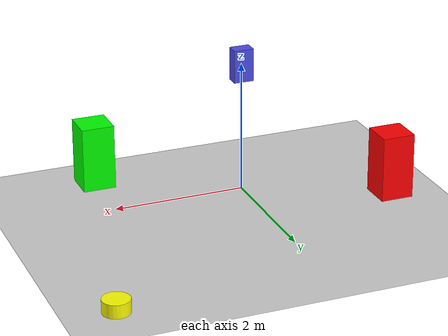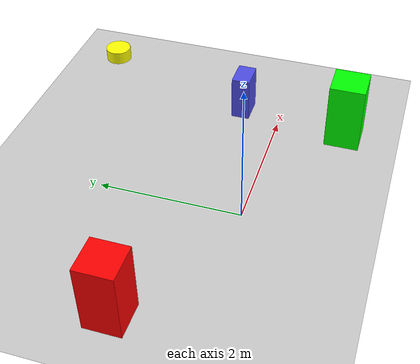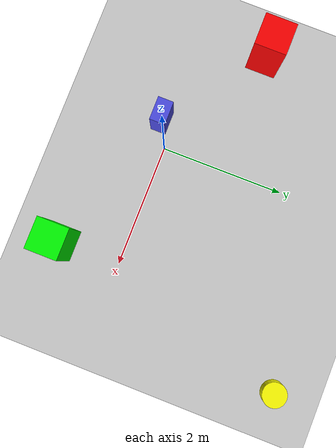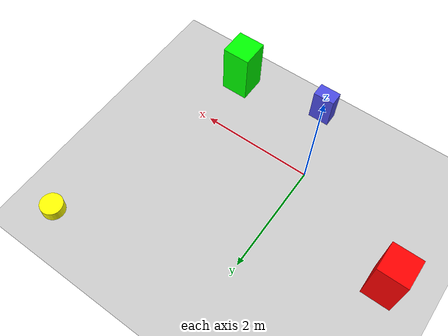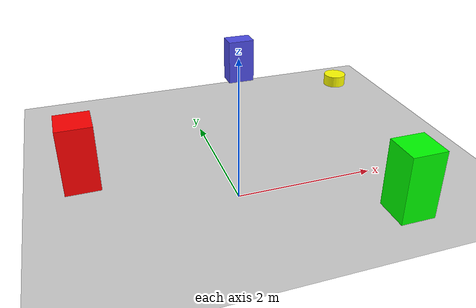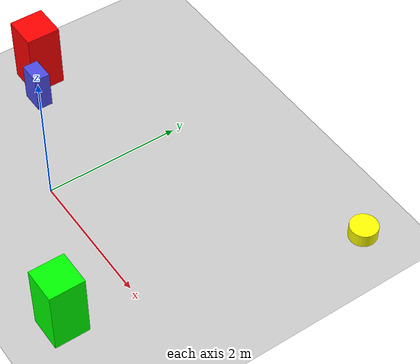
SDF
<?xml version="1.0" ?>
<sdf version="1.6">
  <world name="ros2_fundamentals_world">
    <!-- Include standard models -->
    <include>
      <uri>model://ground_plane</uri>
    </include>

    <include>
      <uri>model://sun</uri>
    </include>

    <!-- Add a simple environment for the humanoid robot -->
    <model name="simple_humanoid">
      <include>
        <uri>model://simple_humanoid</uri>
      </include>
      <pose>0 0 1 0 0 0</pose>
    </model>

    <!-- Add some obstacles for AI testing -->
    <model name="obstacle_1">
      <pose>-2 1 0.5 0 0 0</pose>
      <link name="link">
        <collision name="collision">
          <geometry>
            <box>
              <size>0.5 0.5 1.0</size>
            </box>
          </geometry>
        </collision>
        <visual name="visual">
          <geometry>
            <box>
              <size>0.5 0.5 1.0</size>
            </box>
          </geometry>
          <material>
            <ambient>1 0 0 1</ambient>
            <diffuse>1 0 0 1</diffuse>
          </material>
        </visual>
        <inertial>
          <mass>1.0</mass>
          <inertia>
            <ixx>0.1</ixx>
            <ixy>0.0</ixy>
            <ixz>0.0</ixz>
            <iyy>0.1</iyy>
            <iyz>0.0</iyz>
            <izz>0.1</izz>
          </inertia>
        </inertial>
      </link>
    </model>

    <model name="obstacle_2">
      <pose>2 -1 0.5 0 0 0</pose>
      <link name="link">
        <collision name="collision">
          <geometry>
            <box>
              <size>0.5 0.5 1.0</size>
            </box>
          </geometry>
        </collision>
        <visual name="visual">
          <geometry>
            <box>
              <size>0.5 0.5 1.0</size>
            </box>
          </geometry>
          <material>
            <ambient>0 1 0 1</ambient>
            <diffuse>0 1 0 1</diffuse>
          </material>
        </visual>
        <inertial>
          <mass>1.0</mass>
          <inertia>
            <ixx>0.1</ixx>
            <ixy>0.0</ixy>
            <ixz>0.0</ixz>
            <iyy>0.1</iyy>
            <iyz>0.0</iyz>
            <izz>0.1</izz>
          </inertia>
        </inertial>
      </link>
    </model>

    <!-- Add a target position for navigation exercises -->
    <model name="target">
      <pose>3 3 0.1 0 0 0</pose>
      <link name="link">
        <visual name="visual">
          <geometry>
            <cylinder>
              <radius>0.2</radius>
              <length>0.2</length>
            </cylinder>
          </geometry>
          <material>
            <ambient>1 1 0 1</ambient>
            <diffuse>1 1 0 1</diffuse>
          </material>
        </visual>
        <inertial>
          <mass>0.1</mass>
          <inertia>
            <ixx>0.01</ixx>
            <ixy>0.0</ixy>
            <ixz>0.0</ixz>
            <iyy>0.01</iyy>
            <iyz>0.0</iyz>
            <izz>0.01</izz>
          </inertia>
        </inertial>
      </link>
    </model>
  </world>
</sdf>

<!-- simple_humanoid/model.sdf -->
<sdf version="1.7">
  <model name="simple_humanoid">
    <pose>0 0 1 0 0 0</pose>

    <!-- Main body/chest link -->
    <link name="base_link">
      <inertial>
        <mass>5.0</mass>
        <inertia>
          <ixx>0.1</ixx>
          <ixy>0.0</ixy>
          <ixz>0.0</ixz>
          <iyy>0.1</iyy>
          <iyz>0.0</iyz>
          <izz>0.1</izz>
        </inertia>
      </inertial>

      <visual name="visual">
        <geometry>
          <box>
            <size>0.3 0.2 0.5</size>
          </box>
        </geometry>
        <material>
          <ambient>0.2 0.2 0.8 1</ambient>
          <diffuse>0.3 0.3 0.9 1</diffuse>
          <specular>0.1 0.1 0.1 1</specular>
        </material>
      </visual>

      <collision name="collision">
        <geometry>
          <box>
            <size>0.3 0.2 0.5</size>
          </box>
        </geometry>
      </collision>
    </link>

    <!-- Head link -->
    <link name="head">
      <inertial>
        <mass>1.0</mass>
        <inertia>
          <ixx>0.01</ixx>
          <ixy>0.0</ixy>
          <ixz>0.0</ixz>
          <iyy>0.01</iyy>
          <iyz>0.0</iyz>
          <izz>0.01</izz>
        </inertia>
      </inertial>

      <visual name="visual">
        <geometry>
          <sphere>
            <radius>0.1</radius>
          </sphere>
        </geometry>
        <material>
          <ambient>0.8 0.8 0.8 1</ambient>
          <diffuse>0.9 0.9 0.9 1</diffuse>
          <specular>0.2 0.2 0.2 1</specular>
        </material>
      </visual>

      <collision name="collision">
        <geometry>
          <sphere>
            <radius>0.1</radius>
          </sphere>
        </geometry>
      </collision>
    </link>

    <!-- Joint connecting head to body -->
    <joint name="neck_joint" type="revolute">
      <parent>base_link</parent>
      <child>head</child>
      <axis>
        <xyz>0 0 1</xyz>
        <limit>
          <lower>-1.57</lower>
          <upper>1.57</upper>
          <effort>10.0</effort>
          <velocity>1.0</velocity>
        </limit>
      </axis>
      <pose>0 0 0.4 0 0 0</pose>
    </joint>

    <!-- Left leg -->
    <link name="left_thigh">
      <inertial>
        <mass>2.0</mass>
        <inertia>
          <ixx>0.02</ixx>
          <ixy>0.0</ixy>
          <ixz>0.0</ixz>
          <iyy>0.02</iyy>
          <iyz>0.0</iyz>
          <izz>0.005</izz>
        </inertia>
      </inertial>

      <visual name="visual">
        <geometry>
          <cylinder>
            <radius>0.05</radius>
            <length>0.4</length>
          </cylinder>
        </geometry>
        <material>
          <ambient>0.8 0.2 0.2 1</ambient>
          <diffuse>0.9 0.3 0.3 1</diffuse>
          <specular>0.2 0.1 0.1 1</specular>
        </material>
      </visual>

      <collision name="collision">
        <geometry>
          <cylinder>
            <radius>0.05</radius>
            <length>0.4</length>
          </cylinder>
        </geometry>
      </collision>
    </link>

    <joint name="left_hip" type="revolute">
      <parent>base_link</parent>
      <child>left_thigh</child>
      <axis>
        <xyz>0 1 0</xyz>
        <limit>
          <lower>-1.57</lower>
          <upper>1.57</upper>
          <effort>20.0</effort>
          <velocity>2.0</velocity>
        </limit>
      </axis>
      <pose>-0.1 0 -0.25 0 0 0</pose>
    </joint>

    <!-- Right leg -->
    <link name="right_thigh">
      <inertial>
        <mass>2.0</mass>
        <inertia>
          <ixx>0.02</ixx>
          <ixy>0.0</ixy>
          <ixz>0.0</ixz>
          <iyy>0.02</iyy>
          <iyz>0.0</iyz>
          <izz>0.005</izz>
        </inertia>
      </inertial>

      <visual name="visual">
        <geometry>
          <cylinder>
            <radius>0.05</radius>
            <length>0.4</length>
          </cylinder>
        </geometry>
        <material>
          <ambient>0.8 0.2 0.2 1</ambient>
          <diffuse>0.9 0.3 0.3 1</diffuse>
          <specular>0.2 0.1 0.1 1</specular>
        </material>
      </visual>

      <collision name="collision">
        <geometry>
          <cylinder>
            <radius>0.05</radius>
            <length>0.4</length>
          </cylinder>
        </geometry>
      </collision>
    </link>

    <joint name="right_hip" type="revolute">
      <parent>base_link</parent>
      <child>right_thigh</child>
      <axis>
        <xyz>0 1 0</xyz>
        <limit>
          <lower>-1.57</lower>
          <upper>1.57</upper>
          <effort>20.0</effort>
          <velocity>2.0</velocity>
        </limit>
      </axis>
      <pose>0.1 0 -0.25 0 0 0</pose>
    </joint>

    <!-- Physics properties -->
    <static>false</static>
    <allow_auto_disable>true</allow_auto_disable>
  </model>
</sdf>
